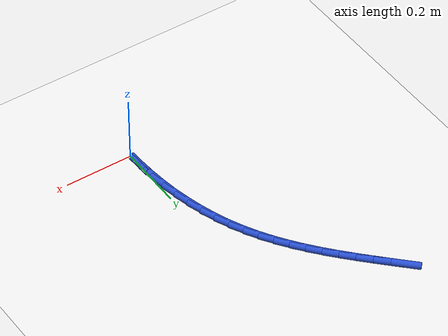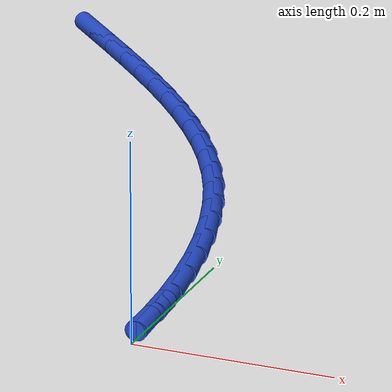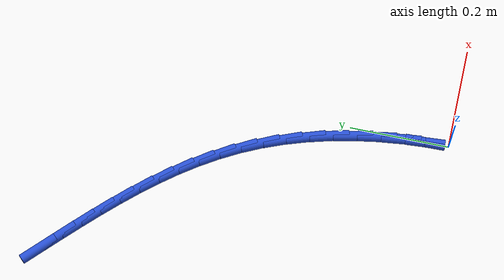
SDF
<sdf version="1.6">
 <world name="default">
  <model name="ground_plane">
   <static>1</static>
   <link name="link">
    <collision name="collision">
     <geometry><plane><normal>0 0 1</normal><size>100 100</size></plane></geometry>
     <surface><friction><ode><mu>100</mu><mu2>50</mu2></ode></friction></surface>
    </collision>
    <visual name="visual">
     <cast_shadows>0</cast_shadows>
     <geometry><plane><normal>0 0 1</normal><size>100 100</size></plane></geometry>
     <material>
      <script><uri>file://media/materials/scripts/gazebo.material</uri><name>Gazebo/WhiteGlow</name></script>
     </material>
    </visual>
   </link>
  </model>
  <model name="line">
   <link name="link_1">
    <pose>-0.0010797746106219251 0.04828047107234886 0.01 0 1.57 -1.502948068944316</pose>
    <collision name="collision">
     <geometry><cylinder><radius>0.01</radius><length>0.08</length></cylinder></geometry>
    </collision>
    <visual name="visual">
     <material>
      <script><name>Gazebo/Blue</name><uri>file://media/materials/scripts/gazebo.material</uri></script>
     </material>
     <geometry><cylinder><radius>0.01</radius><length>0.08</length></cylinder></geometry>
    </visual>
   </link>
   <link name="link_2">
    <pose>-0.00435417076018637 0.09646697244958875 0.01 0 1.57 -1.4568380785739359</pose>
    <collision name="collision">
     <geometry><cylinder><radius>0.01</radius><length>0.08</length></cylinder></geometry>
    </collision>
    <visual name="visual">
     <material>
      <script><name>Gazebo/Blue</name><uri>file://media/materials/scripts/gazebo.material</uri></script>
     </material>
     <geometry><cylinder><radius>0.01</radius><length>0.08</length></cylinder></geometry>
    </visual>
   </link>
   <link name="link_3">
    <pose>-0.00983034954563554 0.14431302913071556 0.01 0 1.57 -1.4095907758107686</pose>
    <collision name="collision">
     <geometry><cylinder><radius>0.01</radius><length>0.08</length></cylinder></geometry>
    </collision>
    <visual name="visual">
     <material>
      <script><name>Gazebo/Blue</name><uri>file://media/materials/scripts/gazebo.material</uri></script>
     </material>
     <geometry><cylinder><radius>0.01</radius><length>0.08</length></cylinder></geometry>
    </visual>
   </link>
   <link name="link_4">
    <pose>-0.01751547206391159 0.19157216611472505 0.01 0 1.57 -1.3606741259340653</pose>
    <collision name="collision">
     <geometry><cylinder><radius>0.01</radius><length>0.08</length></cylinder></geometry>
    </collision>
    <visual name="visual">
     <material>
      <script><name>Gazebo/Blue</name><uri>file://media/materials/scripts/gazebo.material</uri></script>
     </material>
     <geometry><cylinder><radius>0.01</radius><length>0.08</length></cylinder></geometry>
    </visual>
   </link>
   <link name="link_5">
    <pose>-0.0274166994119567 0.2379979084006133 0.01 0 1.57 -1.309529851118331</pose>
    <collision name="collision">
     <geometry><cylinder><radius>0.01</radius><length>0.08</length></cylinder></geometry>
    </collision>
    <visual name="visual">
     <material>
      <script><name>Gazebo/Blue</name><uri>file://media/materials/scripts/gazebo.material</uri></script>
     </material>
     <geometry><cylinder><radius>0.01</radius><length>0.08</length></cylinder></geometry>
    </visual>
   </link>
   <link name="link_6">
    <pose>-0.039541192686713064 0.2833437809873762 0.01 0 1.57 -1.255566710921567</pose>
    <collision name="collision">
     <geometry><cylinder><radius>0.01</radius><length>0.08</length></cylinder></geometry>
    </collision>
    <visual name="visual">
     <material>
      <script><name>Gazebo/Blue</name><uri>file://media/materials/scripts/gazebo.material</uri></script>
     </material>
     <geometry><cylinder><radius>0.01</radius><length>0.08</length></cylinder></geometry>
    </visual>
   </link>
   <link name="link_7">
    <pose>-0.05389611298512284 0.3273633088740096 0.01 0 1.57 -1.1981574657107663</pose>
    <collision name="collision">
     <geometry><cylinder><radius>0.01</radius><length>0.08</length></cylinder></geometry>
    </collision>
    <visual name="visual">
     <material>
      <script><name>Gazebo/Blue</name><uri>file://media/materials/scripts/gazebo.material</uri></script>
     </material>
     <geometry><cylinder><radius>0.01</radius><length>0.08</length></cylinder></geometry>
    </visual>
   </link>
   <link name="link_8">
    <pose>-0.07048862140412818 0.36981001705950933 0.01 0 1.57 -1.1370663758819282</pose>
    <collision name="collision">
     <geometry><cylinder><radius>0.01</radius><length>0.08</length></cylinder></geometry>
    </collision>
    <visual name="visual">
     <material>
      <script><name>Gazebo/Blue</name><uri>file://media/materials/scripts/gazebo.material</uri></script>
     </material>
     <geometry><cylinder><radius>0.01</radius><length>0.08</length></cylinder></geometry>
    </visual>
   </link>
   <link name="link_9">
    <pose>-0.08931663055004367 0.4104626846287461 0.01 0 1.57 -1.076639368212078</pose>
    <collision name="collision">
     <geometry><cylinder><radius>0.01</radius><length>0.08</length></cylinder></geometry>
    </collision>
    <visual name="visual">
     <material>
      <script><name>Gazebo/Blue</name><uri>file://media/materials/scripts/gazebo.material</uri></script>
     </material>
     <geometry><cylinder><radius>0.01</radius><length>0.08</length></cylinder></geometry>
    </visual>
   </link>
   <link name="link_10">
    <pose>-0.11027853460510091 0.449371837368738 0.01 0 1.57 -1.0205103860366862</pose>
    <collision name="collision">
     <geometry><cylinder><radius>0.01</radius><length>0.08</length></cylinder></geometry>
    </collision>
    <visual name="visual">
     <material>
      <script><name>Gazebo/Blue</name><uri>file://media/materials/scripts/gazebo.material</uri></script>
     </material>
     <geometry><cylinder><radius>0.01</radius><length>0.08</length></cylinder></geometry>
    </visual>
   </link>
   <link name="link_11">
    <pose>-0.13321212555456896 0.4867534824566995 0.01 0 1.57 -0.9695946165859214</pose>
    <collision name="collision">
     <geometry><cylinder><radius>0.01</radius><length>0.08</length></cylinder></geometry>
    </collision>
    <visual name="visual">
     <material>
      <script><name>Gazebo/Blue</name><uri>file://media/materials/scripts/gazebo.material</uri></script>
     </material>
     <geometry><cylinder><radius>0.01</radius><length>0.08</length></cylinder></geometry>
    </visual>
   </link>
   <link name="link_12">
    <pose>-0.15795433555531685 0.5228259749319056 0.01 0 1.57 -0.9245294212496116</pose>
    <collision name="collision">
     <geometry><cylinder><radius>0.01</radius><length>0.08</length></cylinder></geometry>
    </collision>
    <visual name="visual">
     <material>
      <script><name>Gazebo/Blue</name><uri>file://media/materials/scripts/gazebo.material</uri></script>
     </material>
     <geometry><cylinder><radius>0.01</radius><length>0.08</length></cylinder></geometry>
    </visual>
   </link>
   <link name="link_13">
    <pose>-0.18434209676421345 0.5578076698336305 0.01 0 1.57 -0.8857226603805859</pose>
    <collision name="collision">
     <geometry><cylinder><radius>0.01</radius><length>0.08</length></cylinder></geometry>
    </collision>
    <visual name="visual">
     <material>
      <script><name>Gazebo/Blue</name><uri>file://media/materials/scripts/gazebo.material</uri></script>
     </material>
     <geometry><cylinder><radius>0.01</radius><length>0.08</length></cylinder></geometry>
    </visual>
   </link>
   <link name="link_14">
    <pose>-0.2122123413381279 0.5919169222011492 0.01 0 1.57 -0.8533835240218439</pose>
    <collision name="collision">
     <geometry><cylinder><radius>0.01</radius><length>0.08</length></cylinder></geometry>
    </collision>
    <visual name="visual">
     <material>
      <script><name>Gazebo/Blue</name><uri>file://media/materials/scripts/gazebo.material</uri></script>
     </material>
     <geometry><cylinder><radius>0.01</radius><length>0.08</length></cylinder></geometry>
    </visual>
   </link>
   <link name="link_15">
    <pose>-0.24140200143392912 0.6253720870737358 0.01 0 1.57 -0.8275637358968018</pose>
    <collision name="collision">
     <geometry><cylinder><radius>0.01</radius><length>0.08</length></cylinder></geometry>
    </collision>
    <visual name="visual">
     <material>
      <script><name>Gazebo/Blue</name><uri>file://media/materials/scripts/gazebo.material</uri></script>
     </material>
     <geometry><cylinder><radius>0.01</radius><length>0.08</length></cylinder></geometry>
    </visual>
   </link>
   <link name="link_16">
    <pose>-0.2717480092084861 0.6583915194906651 0.01 0 1.57 -0.8081995863498982</pose>
    <collision name="collision">
     <geometry><cylinder><radius>0.01</radius><length>0.08</length></cylinder></geometry>
    </collision>
    <visual name="visual">
     <material>
      <script><name>Gazebo/Blue</name><uri>file://media/materials/scripts/gazebo.material</uri></script>
     </material>
     <geometry><cylinder><radius>0.01</radius><length>0.08</length></cylinder></geometry>
    </visual>
   </link>
   <link name="link_17">
    <pose>-0.30308729681866786 0.6911935744912113 0.01 0 1.57 -0.7951486367421489</pose>
    <collision name="collision">
     <geometry><cylinder><radius>0.01</radius><length>0.08</length></cylinder></geometry>
    </collision>
    <visual name="visual">
     <material>
      <script><name>Gazebo/Blue</name><uri>file://media/materials/scripts/gazebo.material</uri></script>
     </material>
     <geometry><cylinder><radius>0.01</radius><length>0.08</length></cylinder></geometry>
    </visual>
   </link>
   <link name="link_18">
    <pose>-0.3352567964213432 0.7239966071146492 0.01 0 1.57 -0.7882181426831398</pose>
    <collision name="collision">
     <geometry><cylinder><radius>0.01</radius><length>0.08</length></cylinder></geometry>
    </collision>
    <visual name="visual">
     <material>
      <script><name>Gazebo/Blue</name><uri>file://media/materials/scripts/gazebo.material</uri></script>
     </material>
     <geometry><cylinder><radius>0.01</radius><length>0.08</length></cylinder></geometry>
    </visual>
   </link>
   <link name="link_19">
    <pose>-0.3680934401733815 0.7570189724002535 0.01 0 1.57 -0.7871845619134492</pose>
    <collision name="collision">
     <geometry><cylinder><radius>0.01</radius><length>0.08</length></cylinder></geometry>
    </collision>
    <visual name="visual">
     <material>
      <script><name>Gazebo/Blue</name><uri>file://media/materials/scripts/gazebo.material</uri></script>
     </material>
     <geometry><cylinder><radius>0.01</radius><length>0.08</length></cylinder></geometry>
    </visual>
   </link>
   <link name="link_161">
    <pose>-0.0010778261391858682 0.04829881917254802 0.01 0 1.57 -1.5484842435185955</pose>
    <collision name="collision">
     <geometry><cylinder><radius>0.01</radius><length>0.08</length></cylinder></geometry>
    </collision>
    <visual name="visual">
     <material>
      <script><name>Gazebo/Blue</name><uri>file://media/materials/scripts/gazebo.material</uri></script>
     </material>
     <geometry><cylinder><radius>0.01</radius><length>0.08</length></cylinder></geometry>
    </visual>
   </link>
  </model>
 </world>
</sdf>
